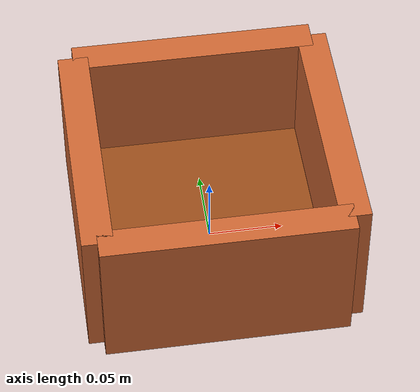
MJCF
<mujoco model="target_box">
  <compiler angle="degree" coordinate="local"/>

  <asset>
    <material name="box_material" rgba="0.8 0.4 0.2 1"/>
    <material name="box_floor" rgba="0.6 0.3 0.1 1"/>
  </asset>

  <worldbody>
    <!-- Box container with walls and floor -->
    <body name="box_container" pos="0 0 0">
      <!-- Box floor -->
      <geom name="box_floor" type="box" size="0.08 0.08 0.01"
            pos="0 0 0.01" material="box_floor" mass="0.5"/>

      <!-- Box walls -->
      <geom name="box_wall_front" type="box" size="0.08 0.01 0.05"
            pos="0 0.08 0.05" material="box_material" mass="0.1"/>
      <geom name="box_wall_back" type="box" size="0.08 0.01 0.05"
            pos="0 -0.08 0.05" material="box_material" mass="0.1"/>
      <geom name="box_wall_left" type="box" size="0.01 0.08 0.05"
            pos="0.08 0 0.05" material="box_material" mass="0.1"/>
      <geom name="box_wall_right" type="box" size="0.01 0.08 0.05"
            pos="-0.08 0 0.05" material="box_material" mass="0.1"/>
    </body>
  </worldbody>
</mujoco>
